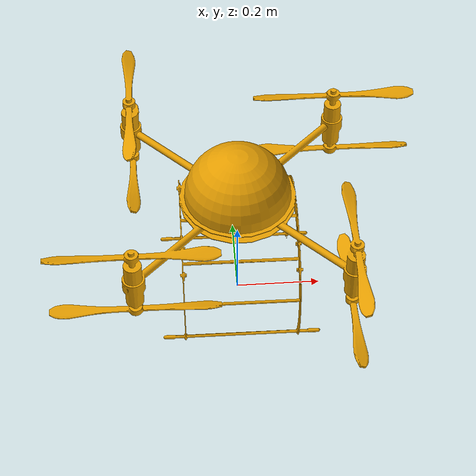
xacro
<?xml version="1.0"?>

<robot name="quadrotor"
    xmlns:sensor="http://playerstage.sourceforge.net/gazebo/xmlschema/#sensor"
    xmlns:controller="http://playerstage.sourceforge.net/gazebo/xmlschema/#controller"
    xmlns:interface="http://playerstage.sourceforge.net/gazebo/xmlschema/#interface"
    xmlns:xacro="http://playerstage.sourceforge.net/gazebo/xmlschema/#interface">

    <!-- Included URDF Files -->
    <include filename="$(find uav)/urdf/bonebraker_base_nuevo.urdf.xacro" />

    <!-- Instantiate quadrotor_base_macro once (has no parameters atm) -->
    <quadrotor_base_macro />

</robot>

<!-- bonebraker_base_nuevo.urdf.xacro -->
<robot xmlns:sensor="http://playerstage.sourceforge.net/gazebo/xmlschema/#sensor"
xmlns:controller="http://playerstage.sourceforge.net/gazebo/xmlschema/#controller"
xmlns:interface="http://playerstage.sourceforge.net/gazebo/xmlschema/#interface"
xmlns:xacro="http://ros.org/wiki/xacro"
>
<include filename="$(find hector_quadrotor_gazebo)/urdf/quadrotor_plugins.urdf.xacro" />
<include filename="$(find bonebraker_arm_controller)/urdf/bonebraker_arm_controller.urdf.xacro" />
  <property name="pi" value="3.1415926535897931" />
  <!-- Main quadrotor link -->
  <xacro:macro name="quadrotor_base_macro">
    <link name="base_link">
      <inertial>
        <mass value="1.487" />
        <origin xyz="0 0 0" />
        <inertia ixx="0.01152" ixy="0.0" ixz="0.0" iyy="0.01152" iyz="0.0" izz="0.0218" />
      </inertial>

      <visual>
        <origin xyz="0 0 0" rpy="0 0 0" />
        <geometry>
          <mesh filename="package://uav/Media/models/bonebreaker.dae"/>
        </geometry>
      </visual>

      <collision>
        <origin xyz="0 0 0" rpy="0 0 0" />
        <geometry>
          <mesh filename="package://uav/Media/models/bonebraker/bonebraker.stl"/>
        </geometry>
      </collision>
    </link>

<gazebo reference="claw_1">
      <turnGravityOff>true</turnGravityOff>
</gazebo>

    <gazebo reference="base_link">
      <turnGravityOff>false</turnGravityOff>
    </gazebo>

    <!-- Gazebo Plugins -->

    <quadrotor_plugins/>
    <bonebraker_arm_controller/>
  </xacro:macro>
</robot>
